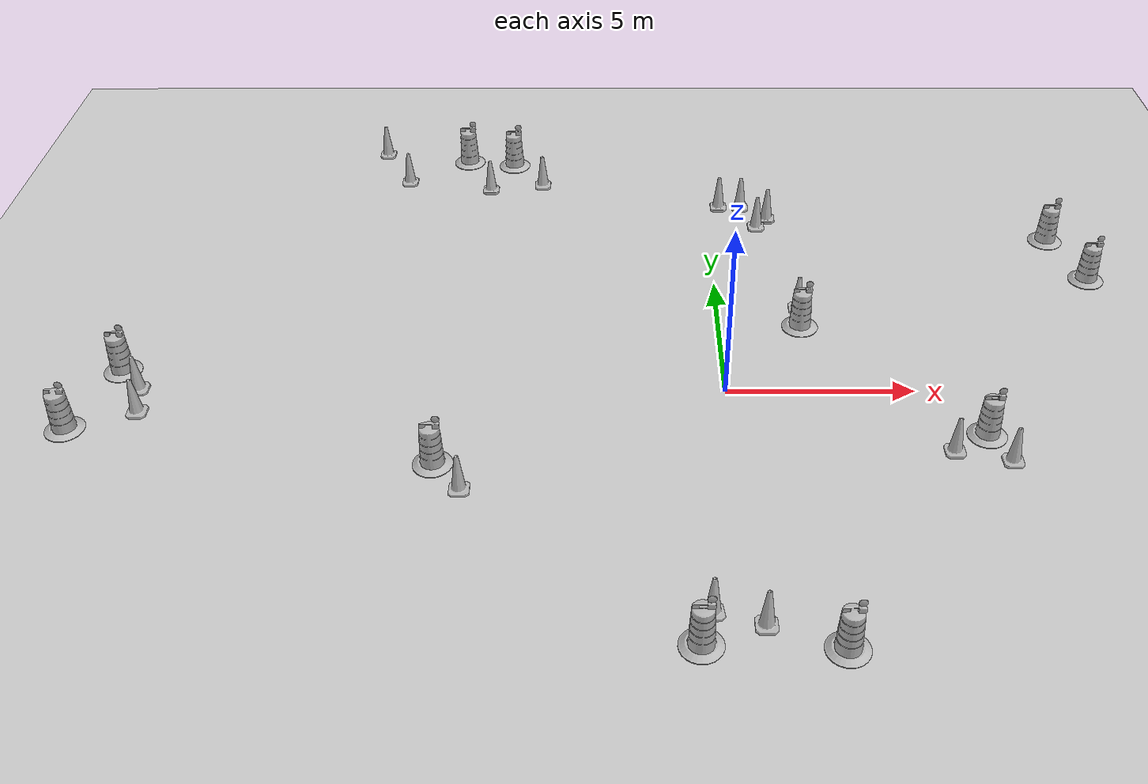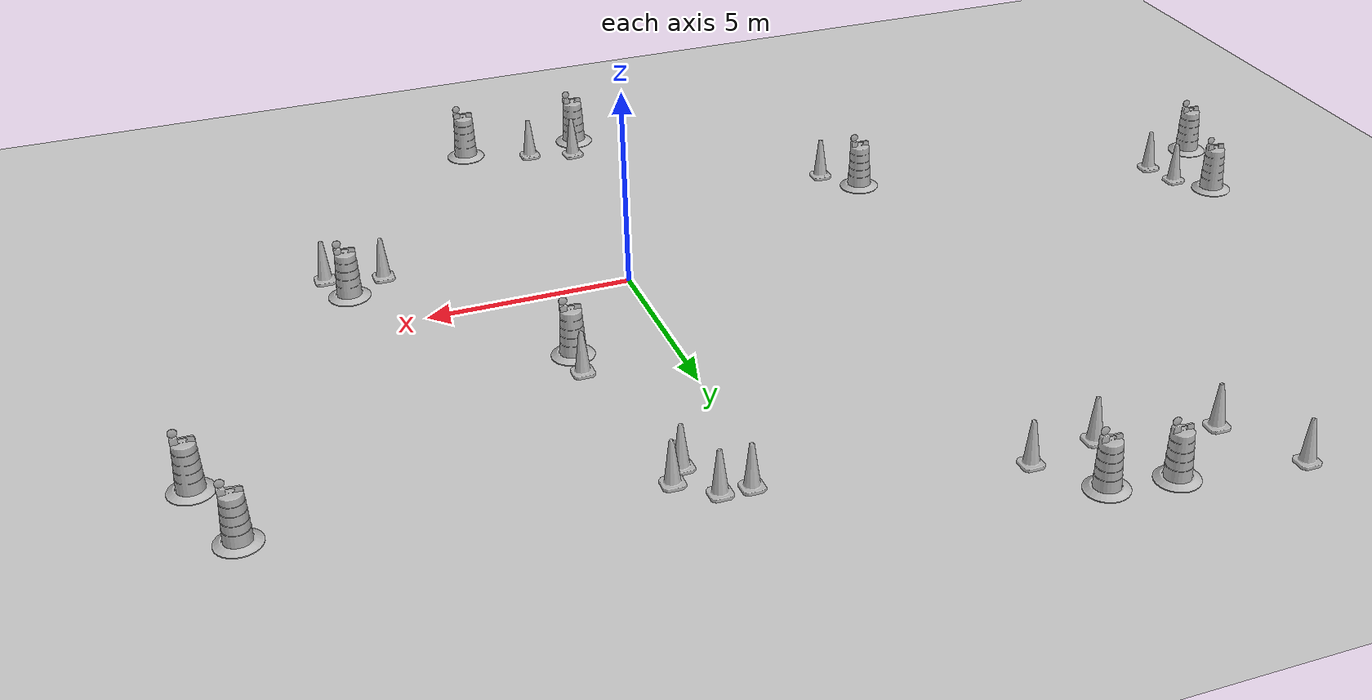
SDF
<sdf version="1.7">
 <world name="default">
  <light name="sun" type="directional">
   <pose>0 0 10 0 -0 0</pose>
   <diffuse>0.8 0.8 0.8 1</diffuse>
   <specular>0.2 0.2 0.2 1</specular>
   <attenuation>
    <range>1000</range>
    <constant>0.9</constant>
    <linear>0.01</linear>
    <quadratic>0.001</quadratic>
   </attenuation>
   <direction>-0.5 0.1 -0.9</direction>
   <spot><inner_angle>0</inner_angle><outer_angle>0</outer_angle><falloff>0</falloff></spot>
  </light>
  <model name="ground_plane">
   <static>1</static>
   <link name="link">
    <collision name="collision">
     <geometry><plane><normal>0 0 1</normal><size>100 100</size></plane></geometry>
     <surface>
      <contact><collide_bitmask>65535</collide_bitmask></contact>
      <friction><ode><mu>100</mu><mu2>50</mu2></ode></friction>
     </surface>
    </collision>
    <visual name="visual">
     <cast_shadows>0</cast_shadows>
     <geometry><plane><normal>0 0 1</normal><size>100 100</size></plane></geometry>
     <material>
      <script><uri>file://media/materials/scripts/gazebo.material</uri><name>Gazebo/Grey</name></script>
     </material>
    </visual>
   </link>
  </model>
  <gravity>0 0 -9.8</gravity>
  <magnetic_field>6e-06 2.3e-05 -4.2e-05</magnetic_field>
  <atmosphere type="adiabatic"/>
  <physics type="ode">
   <max_step_size>0.001</max_step_size>
   <real_time_factor>1</real_time_factor>
   <real_time_update_rate>1000</real_time_update_rate>
  </physics>
  <scene><ambient>0.4 0.4 0.4 1</ambient><background>0.7 0.7 0.7 1</background><shadows>1</shadows></scene>
  <spherical_coordinates>
   <surface_model>EARTH_WGS84</surface_model>
   <latitude_deg>0</latitude_deg>
   <longitude_deg>0</longitude_deg>
   <elevation>0</elevation>
   <heading_deg>0</heading_deg>
  </spherical_coordinates>
  <model name="Construction Barrel">
   <link name="link">
    <inertial>
     <pose>0 0 0.4 0 -0 0</pose>
     <mass>500</mass>
     <inertia><ixx>51.2096</ixx><iyy>51.2096</iyy><izz>25</izz><ixy>0</ixy><ixz>0</ixz><iyz>0</iyz></inertia>
    </inertial>
    <collision name="collision">
     <geometry><mesh><uri>model://construction_barrel/meshes/construction_barrel.dae</uri></mesh></geometry>
    </collision>
    <visual name="visual">
     <geometry><mesh><uri>model://construction_barrel/meshes/construction_barrel.dae</uri></mesh></geometry>
    </visual>
   </link>
   <pose>1.9913 -8.64868 -0 0 0 -5e-05</pose>
  </model>
  <model name="Construction Barrel_clone">
   <link name="link">
    <inertial>
     <pose>0 0 0.4 0 -0 0</pose>
     <mass>500</mass>
     <inertia><ixx>51.2096</ixx><iyy>51.2096</iyy><izz>25</izz><ixy>0</ixy><ixz>0</ixz><iyz>0</iyz></inertia>
    </inertial>
    <collision name="collision">
     <geometry><mesh><uri>model://construction_barrel/meshes/construction_barrel.dae</uri></mesh></geometry>
    </collision>
    <visual name="visual">
     <geometry><mesh><uri>model://construction_barrel/meshes/construction_barrel.dae</uri></mesh></geometry>
    </visual>
   </link>
   <pose>-1.11742 -8.54538 -0 0 -0 0.020025</pose>
  </model>
  <model name="Construction Barrel_clone_0">
   <link name="link">
    <inertial>
     <pose>0 0 0.4 0 -0 0</pose>
     <mass>500</mass>
     <inertia><ixx>51.2096</ixx><iyy>51.2096</iyy><izz>25</izz><ixy>0</ixy><ixz>0</ixz><iyz>0</iyz></inertia>
    </inertial>
    <collision name="collision">
     <geometry><mesh><uri>model://construction_barrel/meshes/construction_barrel.dae</uri></mesh></geometry>
    </collision>
    <visual name="visual">
     <geometry><mesh><uri>model://construction_barrel/meshes/construction_barrel.dae</uri></mesh></geometry>
    </visual>
   </link>
   <pose>11.0311 5.21755 -1e-06 -3e-06 -1e-06 -4.6e-05</pose>
  </model>
  <model name="Construction Barrel_clone_0_clone">
   <link name="link">
    <inertial>
     <pose>0 0 0.4 0 -0 0</pose>
     <mass>500</mass>
     <inertia><ixx>51.2096</ixx><iyy>51.2096</iyy><izz>25</izz><ixy>0</ixy><ixz>0</ixz><iyz>0</iyz></inertia>
    </inertial>
    <collision name="collision">
     <geometry><mesh><uri>model://construction_barrel/meshes/construction_barrel.dae</uri></mesh></geometry>
    </collision>
    <visual name="visual">
     <geometry><mesh><uri>model://construction_barrel/meshes/construction_barrel.dae</uri></mesh></geometry>
    </visual>
   </link>
   <pose>10.3798 7.35322 -0 0 0 -4.8e-05</pose>
  </model>
  <model name="Construction Barrel_clone_0_clone_0">
   <link name="link">
    <inertial>
     <pose>0 0 0.4 0 -0 0</pose>
     <mass>500</mass>
     <inertia><ixx>51.2096</ixx><iyy>51.2096</iyy><izz>25</izz><ixy>0</ixy><ixz>0</ixz><iyz>0</iyz></inertia>
    </inertial>
    <collision name="collision">
     <geometry><mesh><uri>model://construction_barrel/meshes/construction_barrel.dae</uri></mesh></geometry>
    </collision>
    <visual name="visual">
     <geometry><mesh><uri>model://construction_barrel/meshes/construction_barrel.dae</uri></mesh></geometry>
    </visual>
   </link>
   <pose>-16.2153 0.892665 -1e-06 4e-06 -1e-06 -4.7e-05</pose>
  </model>
  <model name="Construction Barrel_clone_0_clone_0_clone">
   <link name="link">
    <inertial>
     <pose>0 0 0.4 0 -0 0</pose>
     <mass>500</mass>
     <inertia><ixx>51.2096</ixx><iyy>51.2096</iyy><izz>25</izz><ixy>0</ixy><ixz>0</ixz><iyz>0</iyz></inertia>
    </inertial>
    <collision name="collision">
     <geometry><mesh><uri>model://construction_barrel/meshes/construction_barrel.dae</uri></mesh></geometry>
    </collision>
    <visual name="visual">
     <geometry><mesh><uri>model://construction_barrel/meshes/construction_barrel.dae</uri></mesh></geometry>
    </visual>
   </link>
   <pose>-17.0001 -1.50671 1e-06 3e-06 2e-06 -4.3e-05</pose>
  </model>
  <model name="Construction Barrel_clone_0_clone_0_clone_0">
   <link name="link">
    <inertial>
     <pose>0 0 0.4 0 -0 0</pose>
     <mass>500</mass>
     <inertia><ixx>51.2096</ixx><iyy>51.2096</iyy><izz>25</izz><ixy>0</ixy><ixz>0</ixz><iyz>0</iyz></inertia>
    </inertial>
    <collision name="collision">
     <geometry><mesh><uri>model://construction_barrel/meshes/construction_barrel.dae</uri></mesh></geometry>
    </collision>
    <visual name="visual">
     <geometry><mesh><uri>model://construction_barrel/meshes/construction_barrel.dae</uri></mesh></geometry>
    </visual>
   </link>
   <pose>-7.82544 12.3044 -0 0 0 -4.6e-05</pose>
  </model>
  <model name="Construction Barrel_clone_0_clone_0_clone_1">
   <link name="link">
    <inertial>
     <pose>0 0 0.4 0 -0 0</pose>
     <mass>500</mass>
     <inertia><ixx>51.2096</ixx><iyy>51.2096</iyy><izz>25</izz><ixy>0</ixy><ixz>0</ixz><iyz>0</iyz></inertia>
    </inertial>
    <collision name="collision">
     <geometry><mesh><uri>model://construction_barrel/meshes/construction_barrel.dae</uri></mesh></geometry>
    </collision>
    <visual name="visual">
     <geometry><mesh><uri>model://construction_barrel/meshes/construction_barrel.dae</uri></mesh></geometry>
    </visual>
   </link>
   <pose>-6.29455 12.0736 -0 0 0 -4.5e-05</pose>
  </model>
  <model name="Construction Barrel_clone_0_clone_0_clone_2">
   <link name="link">
    <inertial>
     <pose>0 0 0.4 0 -0 0</pose>
     <mass>500</mass>
     <inertia><ixx>51.2096</ixx><iyy>51.2096</iyy><izz>25</izz><ixy>0</ixy><ixz>0</ixz><iyz>0</iyz></inertia>
    </inertial>
    <collision name="collision">
     <geometry><mesh><uri>model://construction_barrel/meshes/construction_barrel.dae</uri></mesh></geometry>
    </collision>
    <visual name="visual">
     <geometry><mesh><uri>model://construction_barrel/meshes/construction_barrel.dae</uri></mesh></geometry>
    </visual>
   </link>
   <pose>-7.4591 -2.82511 -1e-06 -3e-06 -1e-06 -4.3e-05</pose>
  </model>
  <model name="Construction Barrel_clone_0_clone_0_clone_3">
   <link name="link">
    <inertial>
     <pose>0 0 0.4 0 -0 0</pose>
     <mass>500</mass>
     <inertia><ixx>51.2096</ixx><iyy>51.2096</iyy><izz>25</izz><ixy>0</ixy><ixz>0</ixz><iyz>0</iyz></inertia>
    </inertial>
    <collision name="collision">
     <geometry><mesh><uri>model://construction_barrel/meshes/construction_barrel.dae</uri></mesh></geometry>
    </collision>
    <visual name="visual">
     <geometry><mesh><uri>model://construction_barrel/meshes/construction_barrel.dae</uri></mesh></geometry>
    </visual>
   </link>
   <pose>6.51667 -1.76991 -2e-06 4e-06 7e-06 -4.5e-05</pose>
  </model>
  <model name="Construction Cone">
   <link name="link">
    <collision name="collision">
     <geometry>
      <mesh><scale>10 10 10</scale><uri>model://construction_cone/meshes/construction_cone.dae</uri></mesh>
     </geometry>
    </collision>
    <visual name="visual">
     <geometry>
      <mesh><scale>10 10 10</scale><uri>model://construction_cone/meshes/construction_cone.dae</uri></mesh>
     </geometry>
    </visual>
    <inertial>
     <inertia><ixx>1</ixx><ixy>0</ixy><ixz>0</ixz><iyy>1</iyy><iyz>0</iyz><izz>1</izz></inertia>
     <mass>1</mass>
    </inertial>
   </link>
   <pose>5.5678 -2.39284 -0 0 -0 0</pose>
  </model>
  <model name="Construction Cone_clone">
   <link name="link">
    <collision name="collision">
     <geometry>
      <mesh><scale>10 10 10</scale><uri>model://construction_cone/meshes/construction_cone.dae</uri></mesh>
     </geometry>
    </collision>
    <visual name="visual">
     <geometry>
      <mesh><scale>10 10 10</scale><uri>model://construction_cone/meshes/construction_cone.dae</uri></mesh>
     </geometry>
    </visual>
    <inertial>
     <inertia><ixx>1</ixx><ixy>0</ixy><ixz>0</ixz><iyy>1</iyy><iyz>0</iyz><izz>1</izz></inertia>
     <mass>1</mass>
    </inertial>
   </link>
   <pose>0.32217 -8.00645 -0 0 -0 0</pose>
  </model>
  <model name="Construction Cone_clone_0">
   <link name="link">
    <collision name="collision">
     <geometry>
      <mesh><scale>10 10 10</scale><uri>model://construction_cone/meshes/construction_cone.dae</uri></mesh>
     </geometry>
    </collision>
    <visual name="visual">
     <geometry>
      <mesh><scale>10 10 10</scale><uri>model://construction_cone/meshes/construction_cone.dae</uri></mesh>
     </geometry>
    </visual>
    <inertial>
     <inertia><ixx>1</ixx><ixy>0</ixy><ixz>0</ixz><iyy>1</iyy><iyz>0</iyz><izz>1</izz></inertia>
     <mass>1</mass>
    </inertial>
   </link>
   <pose>-15.3382 -0.853965 -0 0 -0 0</pose>
  </model>
  <model name="Construction Cone_clone_1">
   <link name="link">
    <collision name="collision">
     <geometry>
      <mesh><scale>10 10 10</scale><uri>model://construction_cone/meshes/construction_cone.dae</uri></mesh>
     </geometry>
    </collision>
    <visual name="visual">
     <geometry>
      <mesh><scale>10 10 10</scale><uri>model://construction_cone/meshes/construction_cone.dae</uri></mesh>
     </geometry>
    </visual>
    <inertial>
     <inertia><ixx>1</ixx><ixy>0</ixy><ixz>0</ixz><iyy>1</iyy><iyz>0</iyz><izz>1</izz></inertia>
     <mass>1</mass>
    </inertial>
   </link>
   <pose>-5.28419 10.7325 -0 0 -0 0</pose>
  </model>
  <model name="Construction Cone_clone_2">
   <link name="link">
    <collision name="collision">
     <geometry>
      <mesh><scale>10 10 10</scale><uri>model://construction_cone/meshes/construction_cone.dae</uri></mesh>
     </geometry>
    </collision>
    <visual name="visual">
     <geometry>
      <mesh><scale>10 10 10</scale><uri>model://construction_cone/meshes/construction_cone.dae</uri></mesh>
     </geometry>
    </visual>
    <inertial>
     <inertia><ixx>1</ixx><ixy>0</ixy><ixz>0</ixz><iyy>1</iyy><iyz>0</iyz><izz>1</izz></inertia>
     <mass>1</mass>
    </inertial>
   </link>
   <pose>-6.96974 10.4437 -0 0 -0 0</pose>
  </model>
  <model name="Construction Cone_clone_3">
   <link name="link">
    <collision name="collision">
     <geometry>
      <mesh><scale>10 10 10</scale><uri>model://construction_cone/meshes/construction_cone.dae</uri></mesh>
     </geometry>
    </collision>
    <visual name="visual">
     <geometry>
      <mesh><scale>10 10 10</scale><uri>model://construction_cone/meshes/construction_cone.dae</uri></mesh>
     </geometry>
    </visual>
    <inertial>
     <inertia><ixx>1</ixx><ixy>0</ixy><ixz>0</ixz><iyy>1</iyy><iyz>0</iyz><izz>1</izz></inertia>
     <mass>1</mass>
    </inertial>
   </link>
   <pose>-9.68129 10.9524 0 -0 -0 -0</pose>
  </model>
  <model name="Construction Cone_clone_4">
   <link name="link">
    <collision name="collision">
     <geometry>
      <mesh><scale>10 10 10</scale><uri>model://construction_cone/meshes/construction_cone.dae</uri></mesh>
     </geometry>
    </collision>
    <visual name="visual">
     <geometry>
      <mesh><scale>10 10 10</scale><uri>model://construction_cone/meshes/construction_cone.dae</uri></mesh>
     </geometry>
    </visual>
    <inertial>
     <inertia><ixx>1</ixx><ixy>0</ixy><ixz>0</ixz><iyy>1</iyy><iyz>0</iyz><izz>1</izz></inertia>
     <mass>1</mass>
    </inertial>
   </link>
   <pose>-10.6588 12.8082 -1e-05 -0 -0 -0</pose>
  </model>
  <model name="Construction Cone_clone_5">
   <link name="link">
    <collision name="collision">
     <geometry>
      <mesh><scale>10 10 10</scale><uri>model://construction_cone/meshes/construction_cone.dae</uri></mesh>
     </geometry>
    </collision>
    <visual name="visual">
     <geometry>
      <mesh><scale>10 10 10</scale><uri>model://construction_cone/meshes/construction_cone.dae</uri></mesh>
     </geometry>
    </visual>
    <inertial>
     <inertia><ixx>1</ixx><ixy>0</ixy><ixz>0</ixz><iyy>1</iyy><iyz>0</iyz><izz>1</izz></inertia>
     <mass>1</mass>
    </inertial>
   </link>
   <pose>1.50242 8.15436 -0 0 -0 0.023097</pose>
  </model>
  <model name="Construction Cone_clone_6">
   <link name="link">
    <collision name="collision">
     <geometry>
      <mesh><scale>10 10 10</scale><uri>model://construction_cone/meshes/construction_cone.dae</uri></mesh>
     </geometry>
    </collision>
    <visual name="visual">
     <geometry>
      <mesh><scale>10 10 10</scale><uri>model://construction_cone/meshes/construction_cone.dae</uri></mesh>
     </geometry>
    </visual>
    <inertial>
     <inertia><ixx>1</ixx><ixy>0</ixy><ixz>0</ixz><iyy>1</iyy><iyz>0</iyz><izz>1</izz></inertia>
     <mass>1</mass>
    </inertial>
   </link>
   <pose>0.39897 9.35243 -0 0 -1e-06 0</pose>
  </model>
  <model name="Construction Cone_clone_7">
   <link name="link">
    <collision name="collision">
     <geometry>
      <mesh><scale>10 10 10</scale><uri>model://construction_cone/meshes/construction_cone.dae</uri></mesh>
     </geometry>
    </collision>
    <visual name="visual">
     <geometry>
      <mesh><scale>10 10 10</scale><uri>model://construction_cone/meshes/construction_cone.dae</uri></mesh>
     </geometry>
    </visual>
    <inertial>
     <inertia><ixx>1</ixx><ixy>0</ixy><ixz>0</ixz><iyy>1</iyy><iyz>0</iyz><izz>1</izz></inertia>
     <mass>1</mass>
    </inertial>
   </link>
   <pose>1.08611 9.3268 -0 0 -0 0</pose>
  </model>
  <model name="Construction Cone_clone_8">
   <link name="link">
    <collision name="collision">
     <geometry>
      <mesh><scale>10 10 10</scale><uri>model://construction_cone/meshes/construction_cone.dae</uri></mesh>
     </geometry>
    </collision>
    <visual name="visual">
     <geometry>
      <mesh><scale>10 10 10</scale><uri>model://construction_cone/meshes/construction_cone.dae</uri></mesh>
     </geometry>
    </visual>
    <inertial>
     <inertia><ixx>1</ixx><ixy>0</ixy><ixz>0</ixz><iyy>1</iyy><iyz>0</iyz><izz>1</izz></inertia>
     <mass>1</mass>
    </inertial>
   </link>
   <pose>1.86632 8.63543 -0 0 0 -0.023834</pose>
  </model>
  <model name="Construction Cone_clone_9">
   <link name="link">
    <collision name="collision">
     <geometry>
      <mesh><scale>10 10 10</scale><uri>model://construction_cone/meshes/construction_cone.dae</uri></mesh>
     </geometry>
    </collision>
    <visual name="visual">
     <geometry>
      <mesh><scale>10 10 10</scale><uri>model://construction_cone/meshes/construction_cone.dae</uri></mesh>
     </geometry>
    </visual>
    <inertial>
     <inertia><ixx>1</ixx><ixy>0</ixy><ixz>0</ixz><iyy>1</iyy><iyz>0</iyz><izz>1</izz></inertia>
     <mass>1</mass>
    </inertial>
   </link>
   <pose>2.30837 3.75892 -0 0 -0 0</pose>
  </model>
  <model name="Construction Cone_clone_10">
   <link name="link">
    <collision name="collision">
     <geometry>
      <mesh><scale>10 10 10</scale><uri>model://construction_cone/meshes/construction_cone.dae</uri></mesh>
     </geometry>
    </collision>
    <visual name="visual">
     <geometry>
      <mesh><scale>10 10 10</scale><uri>model://construction_cone/meshes/construction_cone.dae</uri></mesh>
     </geometry>
    </visual>
    <inertial>
     <inertia><ixx>1</ixx><ixy>0</ixy><ixz>0</ixz><iyy>1</iyy><iyz>0</iyz><izz>1</izz></inertia>
     <mass>1</mass>
    </inertial>
   </link>
   <pose>6.93703 -2.76079 -0 0 -0 0</pose>
  </model>
  <model name="Construction Cone_clone_11">
   <link name="link">
    <collision name="collision">
     <geometry>
      <mesh><scale>10 10 10</scale><uri>model://construction_cone/meshes/construction_cone.dae</uri></mesh>
     </geometry>
    </collision>
    <visual name="visual">
     <geometry>
      <mesh><scale>10 10 10</scale><uri>model://construction_cone/meshes/construction_cone.dae</uri></mesh>
     </geometry>
    </visual>
    <inertial>
     <inertia><ixx>1</ixx><ixy>0</ixy><ixz>0</ixz><iyy>1</iyy><iyz>0</iyz><izz>1</izz></inertia>
     <mass>1</mass>
    </inertial>
   </link>
   <pose>-0.817024 -7.64098 0 -0 -0 -1.4522</pose>
  </model>
  <model name="Construction Cone_clone_12">
   <link name="link">
    <collision name="collision">
     <geometry>
      <mesh><scale>10 10 10</scale><uri>model://construction_cone/meshes/construction_cone.dae</uri></mesh>
     </geometry>
    </collision>
    <visual name="visual">
     <geometry>
      <mesh><scale>10 10 10</scale><uri>model://construction_cone/meshes/construction_cone.dae</uri></mesh>
     </geometry>
    </visual>
    <inertial>
     <inertia><ixx>1</ixx><ixy>0</ixy><ixz>0</ixz><iyy>1</iyy><iyz>0</iyz><izz>1</izz></inertia>
     <mass>1</mass>
    </inertial>
   </link>
   <pose>-15.553 0.091039 -0 -0 -0 -0</pose>
  </model>
  <model name="Construction Cone_clone_13">
   <link name="link">
    <collision name="collision">
     <geometry>
      <mesh><scale>10 10 10</scale><uri>model://construction_cone/meshes/construction_cone.dae</uri></mesh>
     </geometry>
    </collision>
    <visual name="visual">
     <geometry>
      <mesh><scale>10 10 10</scale><uri>model://construction_cone/meshes/construction_cone.dae</uri></mesh>
     </geometry>
    </visual>
    <inertial>
     <inertia><ixx>1</ixx><ixy>0</ixy><ixz>0</ixz><iyy>1</iyy><iyz>0</iyz><izz>1</izz></inertia>
     <mass>1</mass>
    </inertial>
   </link>
   <pose>-6.7181 -3.75755 -0 0 -1e-06 0</pose>
  </model>
  <model name="Construction Barrel_clone_0_clone_1">
   <link name="link">
    <inertial>
     <pose>0 0 0.4 0 -0 0</pose>
     <mass>500</mass>
     <inertia><ixx>51.2096</ixx><iyy>51.2096</iyy><izz>25</izz><ixy>0</ixy><ixz>0</ixz><iyz>0</iyz></inertia>
    </inertial>
    <collision name="collision">
     <geometry><mesh><uri>model://construction_barrel/meshes/construction_barrel.dae</uri></mesh></geometry>
    </collision>
    <visual name="visual">
     <geometry><mesh><uri>model://construction_barrel/meshes/construction_barrel.dae</uri></mesh></geometry>
    </visual>
   </link>
   <pose>2.28132 2.89404 -0 0 0 -4.4e-05</pose>
  </model>
 </world>
</sdf>
